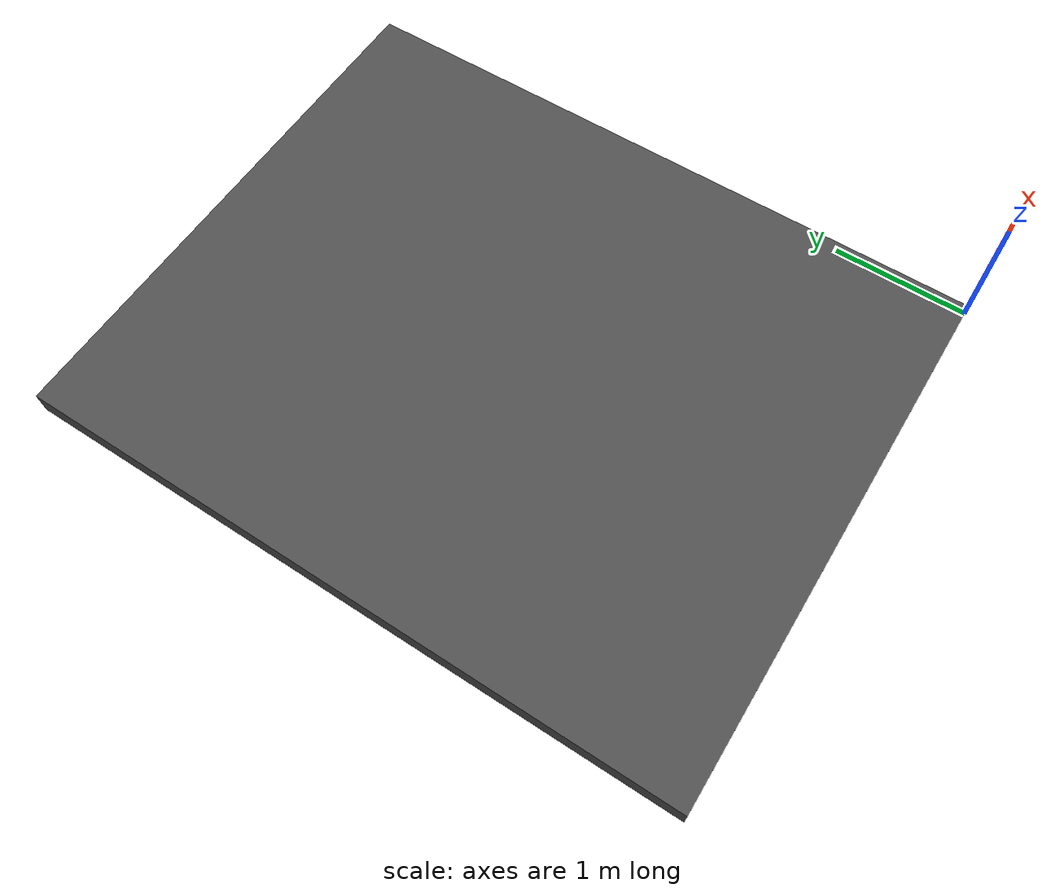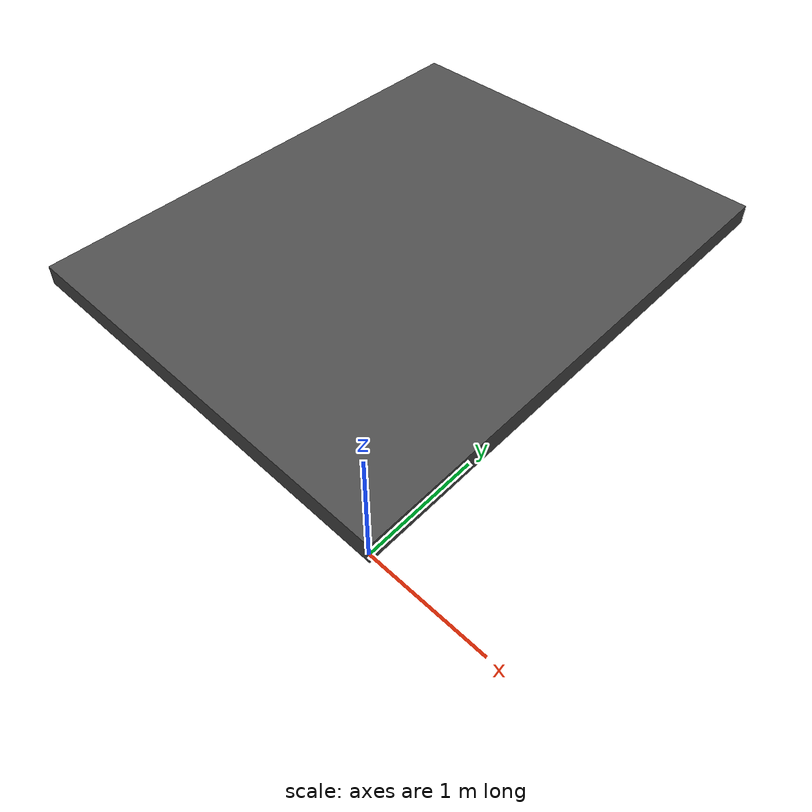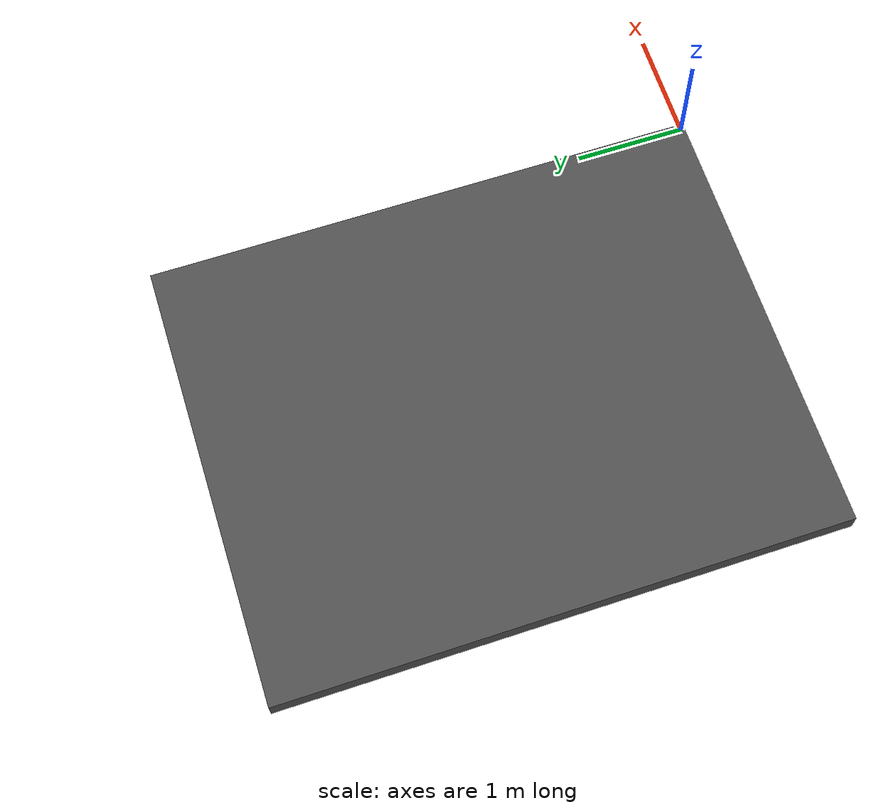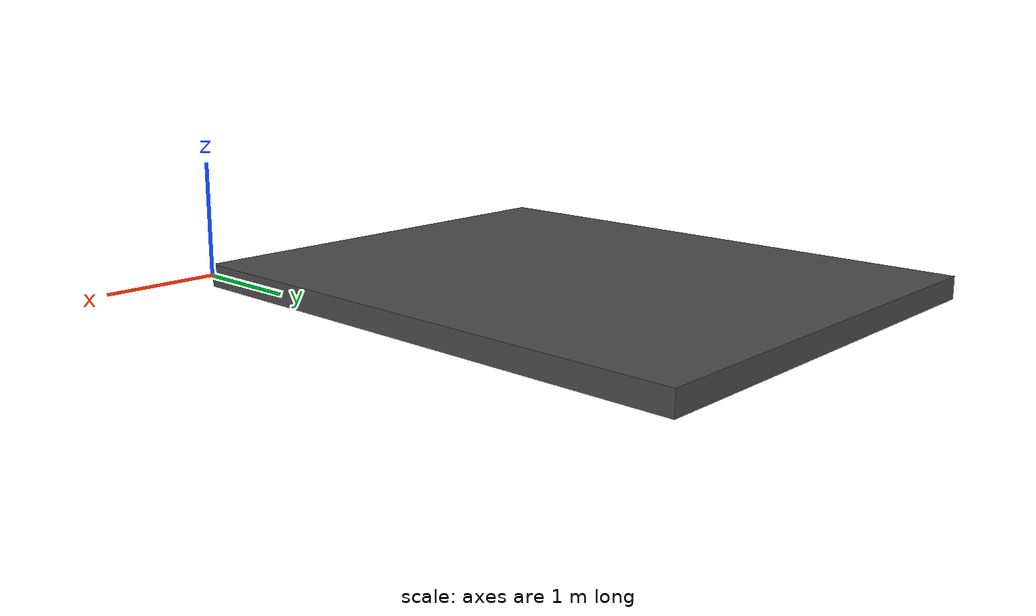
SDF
<sdf version="1.4">
 <world name="default">
  <light name="sun" type="directional">
   <pose>0 0 10 0 -0 0</pose>
   <diffuse>1.0 1.0 1.0 1</diffuse>
   <specular>0.2 0.2 0.2 1</specular>
   <attenuation>
    <range>1000</range>
    <constant>0.9</constant>
    <linear>0.01</linear>
    <quadratic>0.001</quadratic>
   </attenuation>
   <direction>-0.5 -0.5 -1.0</direction>
  </light>
  <include><uri>model://ice_09</uri></include>
  <physics type="ode">
   <max_step_size>0.001</max_step_size>
   <real_time_factor>1</real_time_factor>
   <real_time_update_rate>1000</real_time_update_rate>
   <gravity>0 0 -9.8</gravity>
  </physics>
  <scene>
   <ambient>1 1 1 1</ambient>
   <background>1 1 1 1</background>
   <shadows>1</shadows>
   <sky><clouds><speed>12</speed></clouds></sky>
  </scene>
  <spherical_coordinates>
   <surface_model>EARTH_WGS84</surface_model>
   <latitude_deg>0</latitude_deg>
   <longitude_deg>0</longitude_deg>
   <elevation>0</elevation>
   <heading_deg>0</heading_deg>
  </spherical_coordinates>
 </world>
</sdf>

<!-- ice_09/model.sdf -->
<sdf version="1.5">
  <model name="black_ice_lower_friction">
    <static>true</static>
    <link name="link">
      <collision name="collision">
        <geometry>
          <box>
            <size>8 10 0.2</size>
          </box>
        </geometry>
  	<surface>
          <friction>
            <ode>
              <mu>0.09</mu>
              <mu2>0.09</mu2>
            </ode>
          </friction>
        </surface>
      </collision>
      <visual name="visual_1">
        <pose>-2 2.5 0 0 0 0</pose>
        <cast_shadows>false</cast_shadows>
        <geometry>
          <box>
            <size>4 5 0.2</size>
          </box>
        </geometry>
        <material>
          <script>
            <uri>model://asphalt_plane/materials/scripts</uri>
            <uri>model://asphalt_plane/materials/textures</uri>
            <name>asphalt</name>
          </script>
        </material>
      </visual>
    </link>
  </model>
</sdf>
